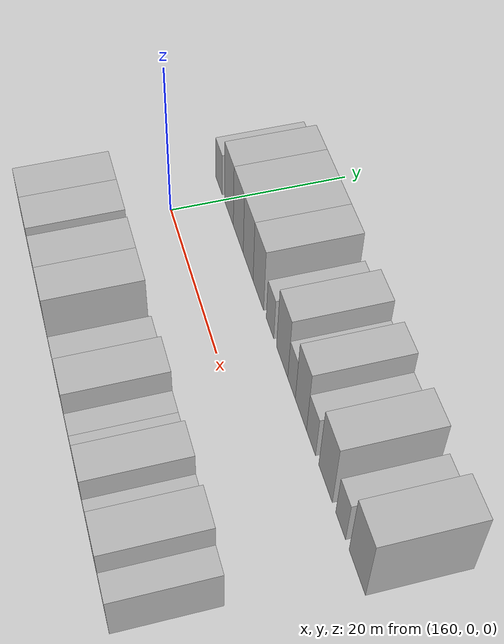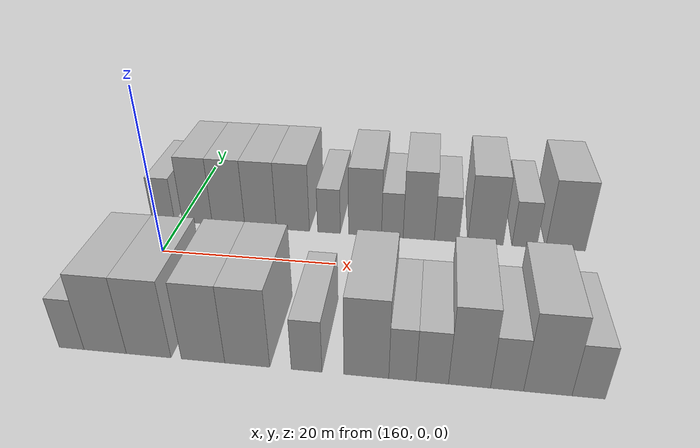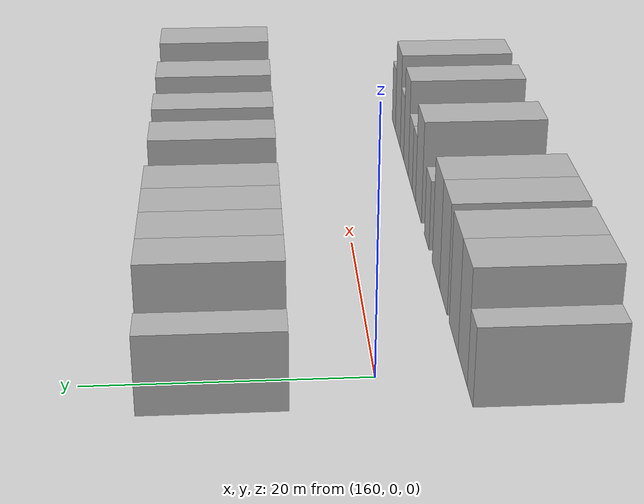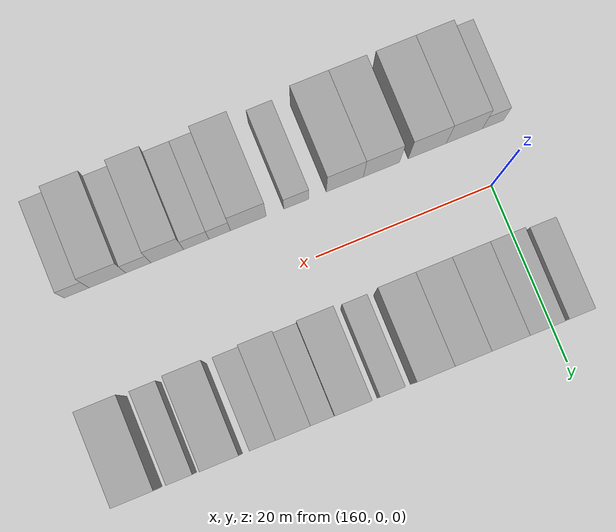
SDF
<sdf version="1.6">
 <world name="default">
  <model name="building_38">
   <static>1</static>
   <pose>157.7415 11.0000 0 0.000000 0.000000 1.570796</pose>
   <link name="link">
    <pose>0 0 3.00 0 0 0</pose>
    <collision name="collision"><geometry><box><size>10.0000 2.8707 6.0000</size></box></geometry></collision>
    <visual name="visual">
     <cast_shadows>0</cast_shadows>
     <geometry><box><size>10.0000 2.8707 6.0000</size></box></geometry>
     <material>
      <script>
       <uri>model://HANNAS_wall/materials/scripts</uri>
       <uri>model://HANNAS_wall/materials/textures</uri>
       <name>vrc/HANNAS_wall</name>
      </script>
     </material>
    </visual>
   </link>
  </model>
  <model name="building_39">
   <static>1</static>
   <pose>162.0608 11.0000 0 0.000000 0.000000 1.570796</pose>
   <link name="link">
    <pose>0 0 4.50 0 0 0</pose>
    <collision name="collision"><geometry><box><size>10.0000 3.7678 9.0000</size></box></geometry></collision>
    <visual name="visual">
     <cast_shadows>0</cast_shadows>
     <geometry><box><size>10.0000 3.7678 9.0000</size></box></geometry>
     <material>
      <script>
       <uri>model://HANNAS_wall/materials/scripts</uri>
       <uri>model://HANNAS_wall/materials/textures</uri>
       <name>vrc/HANNAS_wall</name>
      </script>
     </material>
    </visual>
   </link>
  </model>
  <model name="building_40">
   <static>1</static>
   <pose>165.9803 11.0000 0 0.000000 0.000000 1.570796</pose>
   <link name="link">
    <pose>0 0 4.50 0 0 0</pose>
    <collision name="collision"><geometry><box><size>10.0000 4.0713 9.0000</size></box></geometry></collision>
    <visual name="visual">
     <cast_shadows>0</cast_shadows>
     <geometry><box><size>10.0000 4.0713 9.0000</size></box></geometry>
     <material>
      <script>
       <uri>model://HANNAS_wall/materials/scripts</uri>
       <uri>model://HANNAS_wall/materials/textures</uri>
       <name>vrc/HANNAS_wall</name>
      </script>
     </material>
    </visual>
   </link>
  </model>
  <model name="building_41">
   <static>1</static>
   <pose>169.9663 11.0000 0 0.000000 0.000000 1.570796</pose>
   <link name="link">
    <pose>0 0 4.50 0 0 0</pose>
    <collision name="collision"><geometry><box><size>10.0000 3.9006 9.0000</size></box></geometry></collision>
    <visual name="visual">
     <cast_shadows>0</cast_shadows>
     <geometry><box><size>10.0000 3.9006 9.0000</size></box></geometry>
     <material>
      <script>
       <uri>model://HANNAS_wall/materials/scripts</uri>
       <uri>model://HANNAS_wall/materials/textures</uri>
       <name>vrc/HANNAS_wall</name>
      </script>
     </material>
    </visual>
   </link>
  </model>
  <model name="building_42">
   <static>1</static>
   <pose>173.9365 11.0000 0 0.000000 0.000000 1.570796</pose>
   <link name="link">
    <pose>0 0 4.50 0 0 0</pose>
    <collision name="collision"><geometry><box><size>10.0000 4.0397 9.0000</size></box></geometry></collision>
    <visual name="visual">
     <cast_shadows>0</cast_shadows>
     <geometry><box><size>10.0000 4.0397 9.0000</size></box></geometry>
     <material>
      <script>
       <uri>model://HANNAS_wall/materials/scripts</uri>
       <uri>model://HANNAS_wall/materials/textures</uri>
       <name>vrc/HANNAS_wall</name>
      </script>
     </material>
    </visual>
   </link>
  </model>
  <model name="building_43">
   <static>1</static>
   <pose>178.3204 11.0000 0 0.000000 0.000000 1.570796</pose>
   <link name="link">
    <pose>0 0 3.00 0 0 0</pose>
    <collision name="collision"><geometry><box><size>10.0000 2.7282 6.0000</size></box></geometry></collision>
    <visual name="visual">
     <cast_shadows>0</cast_shadows>
     <geometry><box><size>10.0000 2.7282 6.0000</size></box></geometry>
     <material>
      <script>
       <uri>model://HANNAS_wall/materials/scripts</uri>
       <uri>model://HANNAS_wall/materials/textures</uri>
       <name>vrc/HANNAS_wall</name>
      </script>
     </material>
    </visual>
   </link>
  </model>
  <model name="building_44">
   <static>1</static>
   <pose>182.6560 11.0000 0 0.000000 0.000000 1.570796</pose>
   <link name="link">
    <pose>0 0 4.50 0 0 0</pose>
    <collision name="collision"><geometry><box><size>10.0000 3.9429 9.0000</size></box></geometry></collision>
    <visual name="visual">
     <cast_shadows>0</cast_shadows>
     <geometry><box><size>10.0000 3.9429 9.0000</size></box></geometry>
     <material>
      <script>
       <uri>model://HANNAS_wall/materials/scripts</uri>
       <uri>model://HANNAS_wall/materials/textures</uri>
       <name>vrc/HANNAS_wall</name>
      </script>
     </material>
    </visual>
   </link>
  </model>
  <model name="building_45">
   <static>1</static>
   <pose>185.9031 11.0000 0 0.000000 0.000000 1.570796</pose>
   <link name="link">
    <pose>0 0 3.00 0 0 0</pose>
    <collision name="collision"><geometry><box><size>10.0000 2.5512 6.0000</size></box></geometry></collision>
    <visual name="visual">
     <cast_shadows>0</cast_shadows>
     <geometry><box><size>10.0000 2.5512 6.0000</size></box></geometry>
     <material>
      <script>
       <uri>model://HANNAS_wall/materials/scripts</uri>
       <uri>model://HANNAS_wall/materials/textures</uri>
       <name>vrc/HANNAS_wall</name>
      </script>
     </material>
    </visual>
   </link>
  </model>
  <model name="building_46">
   <static>1</static>
   <pose>189.0134 11.0000 0 0.000000 0.000000 1.570796</pose>
   <link name="link">
    <pose>0 0 4.50 0 0 0</pose>
    <collision name="collision"><geometry><box><size>10.0000 3.6694 9.0000</size></box></geometry></collision>
    <visual name="visual">
     <cast_shadows>0</cast_shadows>
     <geometry><box><size>10.0000 3.6694 9.0000</size></box></geometry>
     <material>
      <script>
       <uri>model://HANNAS_wall/materials/scripts</uri>
       <uri>model://HANNAS_wall/materials/textures</uri>
       <name>vrc/HANNAS_wall</name>
      </script>
     </material>
    </visual>
   </link>
  </model>
  <model name="building_47">
   <static>1</static>
   <pose>192.2828 11.0000 0 0.000000 0.000000 1.570796</pose>
   <link name="link">
    <pose>0 0 3.00 0 0 0</pose>
    <collision name="collision"><geometry><box><size>10.0000 2.8692 6.0000</size></box></geometry></collision>
    <visual name="visual">
     <cast_shadows>0</cast_shadows>
     <geometry><box><size>10.0000 2.8692 6.0000</size></box></geometry>
     <material>
      <script>
       <uri>model://HANNAS_wall/materials/scripts</uri>
       <uri>model://HANNAS_wall/materials/textures</uri>
       <name>vrc/HANNAS_wall</name>
      </script>
     </material>
    </visual>
   </link>
  </model>
  <model name="building_48">
   <static>1</static>
   <pose>196.7626 11.0000 0 0.000000 0.000000 1.570796</pose>
   <link name="link">
    <pose>0 0 4.50 0 0 0</pose>
    <collision name="collision"><geometry><box><size>10.0000 4.0905 9.0000</size></box></geometry></collision>
    <visual name="visual">
     <cast_shadows>0</cast_shadows>
     <geometry><box><size>10.0000 4.0905 9.0000</size></box></geometry>
     <material>
      <script>
       <uri>model://HANNAS_wall/materials/scripts</uri>
       <uri>model://HANNAS_wall/materials/textures</uri>
       <name>vrc/HANNAS_wall</name>
      </script>
     </material>
    </visual>
   </link>
  </model>
  <model name="building_49">
   <static>1</static>
   <pose>201.2171 11.0000 0 0.000000 0.000000 1.570796</pose>
   <link name="link">
    <pose>0 0 3.00 0 0 0</pose>
    <collision name="collision"><geometry><box><size>10.0000 2.8185 6.0000</size></box></geometry></collision>
    <visual name="visual">
     <cast_shadows>0</cast_shadows>
     <geometry><box><size>10.0000 2.8185 6.0000</size></box></geometry>
     <material>
      <script>
       <uri>model://HANNAS_wall/materials/scripts</uri>
       <uri>model://HANNAS_wall/materials/textures</uri>
       <name>vrc/HANNAS_wall</name>
      </script>
     </material>
    </visual>
   </link>
  </model>
  <model name="building_50">
   <static>1</static>
   <pose>205.8533 11.0000 0 0.000000 0.000000 1.570796</pose>
   <link name="link">
    <pose>0 0 4.50 0 0 0</pose>
    <collision name="collision"><geometry><box><size>10.0000 4.4539 9.0000</size></box></geometry></collision>
    <visual name="visual">
     <cast_shadows>0</cast_shadows>
     <geometry><box><size>10.0000 4.4539 9.0000</size></box></geometry>
     <material>
      <script>
       <uri>model://HANNAS_wall/materials/scripts</uri>
       <uri>model://HANNAS_wall/materials/textures</uri>
       <name>vrc/HANNAS_wall</name>
      </script>
     </material>
    </visual>
   </link>
  </model>
  <model name="building_89">
   <static>1</static>
   <pose>157.2726 -11.0000 0 0.000000 0.000000 1.570796</pose>
   <link name="link">
    <pose>0 0 3.00 0 0 0</pose>
    <collision name="collision"><geometry><box><size>10.0000 2.4621 6.0000</size></box></geometry></collision>
    <visual name="visual">
     <cast_shadows>0</cast_shadows>
     <geometry><box><size>10.0000 2.4621 6.0000</size></box></geometry>
     <material>
      <script>
       <uri>model://HANNAS_wall/materials/scripts</uri>
       <uri>model://HANNAS_wall/materials/textures</uri>
       <name>vrc/HANNAS_wall</name>
      </script>
     </material>
    </visual>
   </link>
  </model>
  <model name="building_90">
   <static>1</static>
   <pose>160.5887 -11.0000 0 0.000000 0.000000 1.570796</pose>
   <link name="link">
    <pose>0 0 4.50 0 0 0</pose>
    <collision name="collision"><geometry><box><size>10.0000 4.1700 9.0000</size></box></geometry></collision>
    <visual name="visual">
     <cast_shadows>0</cast_shadows>
     <geometry><box><size>10.0000 4.1700 9.0000</size></box></geometry>
     <material>
      <script>
       <uri>model://HANNAS_wall/materials/scripts</uri>
       <uri>model://HANNAS_wall/materials/textures</uri>
       <name>vrc/HANNAS_wall</name>
      </script>
     </material>
    </visual>
   </link>
  </model>
  <model name="building_91">
   <static>1</static>
   <pose>164.8384 -11.0000 0 0.000000 0.000000 1.570796</pose>
   <link name="link">
    <pose>0 0 4.50 0 0 0</pose>
    <collision name="collision"><geometry><box><size>10.0000 4.3294 9.0000</size></box></geometry></collision>
    <visual name="visual">
     <cast_shadows>0</cast_shadows>
     <geometry><box><size>10.0000 4.3294 9.0000</size></box></geometry>
     <material>
      <script>
       <uri>model://HANNAS_wall/materials/scripts</uri>
       <uri>model://HANNAS_wall/materials/textures</uri>
       <name>vrc/HANNAS_wall</name>
      </script>
     </material>
    </visual>
   </link>
  </model>
  <model name="building_92">
   <static>1</static>
   <pose>170.0711 -11.0000 0 0.000000 0.000000 1.570796</pose>
   <link name="link">
    <pose>0 0 4.50 0 0 0</pose>
    <collision name="collision"><geometry><box><size>10.0000 4.1360 9.0000</size></box></geometry></collision>
    <visual name="visual">
     <cast_shadows>0</cast_shadows>
     <geometry><box><size>10.0000 4.1360 9.0000</size></box></geometry>
     <material>
      <script>
       <uri>model://HANNAS_wall/materials/scripts</uri>
       <uri>model://HANNAS_wall/materials/textures</uri>
       <name>vrc/HANNAS_wall</name>
      </script>
     </material>
    </visual>
   </link>
  </model>
  <model name="building_93">
   <static>1</static>
   <pose>174.2470 -11.0000 0 0.000000 0.000000 1.570796</pose>
   <link name="link">
    <pose>0 0 4.50 0 0 0</pose>
    <collision name="collision"><geometry><box><size>10.0000 4.2157 9.0000</size></box></geometry></collision>
    <visual name="visual">
     <cast_shadows>0</cast_shadows>
     <geometry><box><size>10.0000 4.2157 9.0000</size></box></geometry>
     <material>
      <script>
       <uri>model://HANNAS_wall/materials/scripts</uri>
       <uri>model://HANNAS_wall/materials/textures</uri>
       <name>vrc/HANNAS_wall</name>
      </script>
     </material>
    </visual>
   </link>
  </model>
  <model name="building_94">
   <static>1</static>
   <pose>179.7655 -11.0000 0 0.000000 0.000000 1.570796</pose>
   <link name="link">
    <pose>0 0 3.00 0 0 0</pose>
    <collision name="collision"><geometry><box><size>10.0000 2.8214 6.0000</size></box></geometry></collision>
    <visual name="visual">
     <cast_shadows>0</cast_shadows>
     <geometry><box><size>10.0000 2.8214 6.0000</size></box></geometry>
     <material>
      <script>
       <uri>model://HANNAS_wall/materials/scripts</uri>
       <uri>model://HANNAS_wall/materials/textures</uri>
       <name>vrc/HANNAS_wall</name>
      </script>
     </material>
    </visual>
   </link>
  </model>
  <model name="building_95">
   <static>1</static>
   <pose>185.1986 -11.0000 0 0.000000 0.000000 1.570796</pose>
   <link name="link">
    <pose>0 0 4.50 0 0 0</pose>
    <collision name="collision"><geometry><box><size>10.0000 4.0448 9.0000</size></box></geometry></collision>
    <visual name="visual">
     <cast_shadows>0</cast_shadows>
     <geometry><box><size>10.0000 4.0448 9.0000</size></box></geometry>
     <material>
      <script>
       <uri>model://HANNAS_wall/materials/scripts</uri>
       <uri>model://HANNAS_wall/materials/textures</uri>
       <name>vrc/HANNAS_wall</name>
      </script>
     </material>
    </visual>
   </link>
  </model>
  <model name="building_96">
   <static>1</static>
   <pose>188.4302 -11.0000 0 0.000000 0.000000 1.570796</pose>
   <link name="link">
    <pose>0 0 3.00 0 0 0</pose>
    <collision name="collision"><geometry><box><size>10.0000 2.4184 6.0000</size></box></geometry></collision>
    <visual name="visual">
     <cast_shadows>0</cast_shadows>
     <geometry><box><size>10.0000 2.4184 6.0000</size></box></geometry>
     <material>
      <script>
       <uri>model://HANNAS_wall/materials/scripts</uri>
       <uri>model://HANNAS_wall/materials/textures</uri>
       <name>vrc/HANNAS_wall</name>
      </script>
     </material>
    </visual>
   </link>
  </model>
  <model name="building_97">
   <static>1</static>
   <pose>191.0744 -11.0000 0 0.000000 0.000000 1.570796</pose>
   <link name="link">
    <pose>0 0 3.00 0 0 0</pose>
    <collision name="collision"><geometry><box><size>10.0000 2.8701 6.0000</size></box></geometry></collision>
    <visual name="visual">
     <cast_shadows>0</cast_shadows>
     <geometry><box><size>10.0000 2.8701 6.0000</size></box></geometry>
     <material>
      <script>
       <uri>model://HANNAS_wall/materials/scripts</uri>
       <uri>model://HANNAS_wall/materials/textures</uri>
       <name>vrc/HANNAS_wall</name>
      </script>
     </material>
    </visual>
   </link>
  </model>
  <model name="building_98">
   <static>1</static>
   <pose>194.3472 -11.0000 0 0.000000 0.000000 1.570796</pose>
   <link name="link">
    <pose>0 0 4.50 0 0 0</pose>
    <collision name="collision"><geometry><box><size>10.0000 3.6755 9.0000</size></box></geometry></collision>
    <visual name="visual">
     <cast_shadows>0</cast_shadows>
     <geometry><box><size>10.0000 3.6755 9.0000</size></box></geometry>
     <material>
      <script>
       <uri>model://HANNAS_wall/materials/scripts</uri>
       <uri>model://HANNAS_wall/materials/textures</uri>
       <name>vrc/HANNAS_wall</name>
      </script>
     </material>
    </visual>
   </link>
  </model>
  <model name="building_99">
   <static>1</static>
   <pose>197.6040 -11.0000 0 0.000000 0.000000 1.570796</pose>
   <link name="link">
    <pose>0 0 3.00 0 0 0</pose>
    <collision name="collision"><geometry><box><size>10.0000 2.8382 6.0000</size></box></geometry></collision>
    <visual name="visual">
     <cast_shadows>0</cast_shadows>
     <geometry><box><size>10.0000 2.8382 6.0000</size></box></geometry>
     <material>
      <script>
       <uri>model://HANNAS_wall/materials/scripts</uri>
       <uri>model://HANNAS_wall/materials/textures</uri>
       <name>vrc/HANNAS_wall</name>
      </script>
     </material>
    </visual>
   </link>
  </model>
  <model name="building_100">
   <static>1</static>
   <pose>201.0825 -11.0000 0 0.000000 0.000000 1.570796</pose>
   <link name="link">
    <pose>0 0 4.50 0 0 0</pose>
    <collision name="collision"><geometry><box><size>10.0000 4.1187 9.0000</size></box></geometry></collision>
    <visual name="visual">
     <cast_shadows>0</cast_shadows>
     <geometry><box><size>10.0000 4.1187 9.0000</size></box></geometry>
     <material>
      <script>
       <uri>model://HANNAS_wall/materials/scripts</uri>
       <uri>model://HANNAS_wall/materials/textures</uri>
       <name>vrc/HANNAS_wall</name>
      </script>
     </material>
    </visual>
   </link>
  </model>
  <model name="building_101">
   <static>1</static>
   <pose>204.5420 -11.0000 0 0.000000 0.000000 1.570796</pose>
   <link name="link">
    <pose>0 0 3.00 0 0 0</pose>
    <collision name="collision"><geometry><box><size>10.0000 2.8003 6.0000</size></box></geometry></collision>
    <visual name="visual">
     <cast_shadows>0</cast_shadows>
     <geometry><box><size>10.0000 2.8003 6.0000</size></box></geometry>
     <material>
      <script>
       <uri>model://HANNAS_wall/materials/scripts</uri>
       <uri>model://HANNAS_wall/materials/textures</uri>
       <name>vrc/HANNAS_wall</name>
      </script>
     </material>
    </visual>
   </link>
  </model>
 </world>
</sdf>
